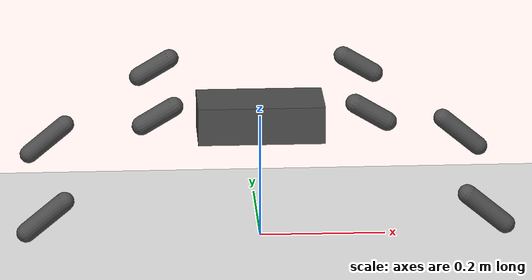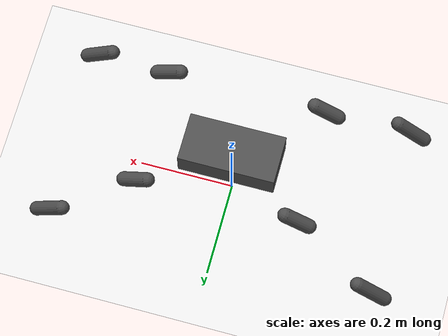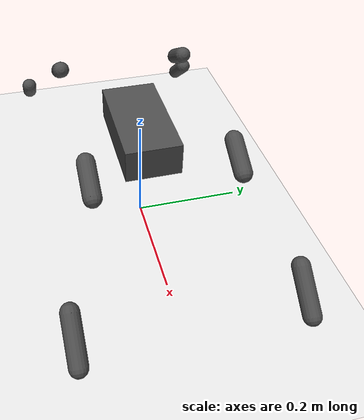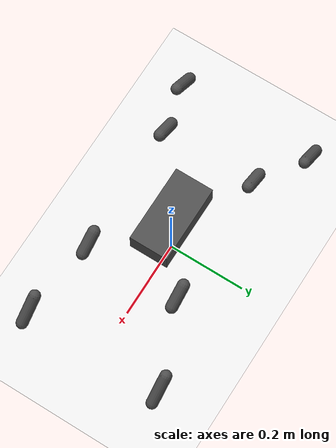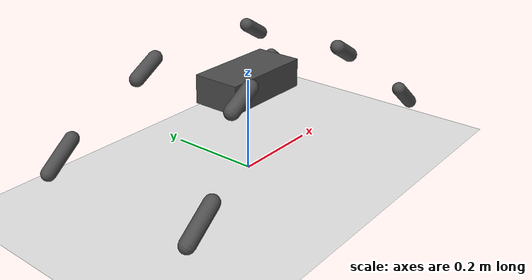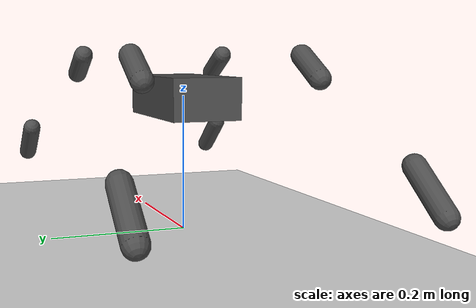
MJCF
<?xml version="1.0" ?>
<mujoco model="acebott_spider">
  <compiler angle="degree" coordinate="local"/>
  <option timestep="0.01" gravity="0 0 -9.81"/>

  <default>
    <joint limited="true" damping="0.5"/>
    <geom type="capsule" rgba="0.3 0.3 0.3 1"/>
    <motor ctrlrange="-1 1"/>
  </default>

  <worldbody>
    <!-- Ground -->
    <geom name="floor" type="plane" pos="0 0 0" size="5 5 0.1" rgba="0.9 0.9 0.9 1" contype="1" conaffinity="1"/>

    <!-- Central body -->
    <body name="torso" pos="0 0 0.2">
      <geom size="0.1 0.05 0.03" type="box" mass="1.0" />

      <!-- Front Left Leg -->
      <body name="front_left_hip" pos="0.07 0.06 0.03">
        <joint name="front_left_hip_joint" type="hinge" axis="0 1 0" range="-60 60"/>
        <geom fromto="0.07 0.06 0.03 0.12 0.06 0" size="0.015"/>

        <body name="front_left_knee" pos="0.12 0.06 -0.05">
          <joint name="front_left_knee_joint" type="hinge" axis="1 0 0" range="-45 45"/>
          <geom fromto="0.12 0.06 -0.05 0.18 0.06 -0.1" size="0.015"/>
        </body>
      </body>

      <!-- Front Right Leg -->
      <body name="front_right_hip" pos="0.07 -0.06 0.03">
        <joint name="front_right_hip_joint" type="hinge" axis="0 1 0" range="-60 60"/>
        <geom fromto="0.07 -0.06 0.03 0.12 -0.06 0" size="0.015"/>

        <body name="front_right_knee" pos="0.12 -0.06 -0.05">
          <joint name="front_right_knee_joint" type="hinge" axis="1 0 0" range="-45 45"/>
          <geom fromto="0.12 -0.06 -0.05 0.18 -0.06 -0.1" size="0.015"/>
        </body>
      </body>

      <!-- Back Left Leg -->
      <body name="back_left_hip" pos="-0.07 0.06 0.03">
        <joint name="back_left_hip_joint" type="hinge" axis="0 1 0" range="-60 60"/>
        <geom fromto="-0.07 0.06 0.03 -0.12 0.06 0" size="0.015"/>

        <body name="back_left_knee" pos="-0.12 0.06 -0.05">
          <joint name="back_left_knee_joint" type="hinge" axis="1 0 0" range="-45 45"/>
          <geom fromto="-0.12 0.06 -0.05 -0.18 0.06 -0.1" size="0.015"/>
        </body>
      </body>

      <!-- Back Right Leg -->
      <body name="back_right_hip" pos="-0.07 -0.06 0.03">
        <joint name="back_right_hip_joint" type="hinge" axis="0 1 0" range="-60 60"/>
        <geom fromto="-0.07 -0.06 0.03 -0.12 -0.06 0" size="0.015"/>

        <body name="back_right_knee" pos="-0.12 -0.06 -0.05">
          <joint name="back_right_knee_joint" type="hinge" axis="1 0 0" range="-45 45"/>
          <geom fromto="-0.12 -0.06 -0.05 -0.18 -0.06 -0.1" size="0.015"/>
        </body>
      </body>

    </body>
  </worldbody>

  <actuator>
    <!-- Motors: 2 per leg -->
    <motor joint="front_left_hip_joint"/>
    <motor joint="front_left_knee_joint"/>
    <motor joint="front_right_hip_joint"/>
    <motor joint="front_right_knee_joint"/>
    <motor joint="back_left_hip_joint"/>
    <motor joint="back_left_knee_joint"/>
    <motor joint="back_right_hip_joint"/>
    <motor joint="back_right_knee_joint"/>
  </actuator>
</mujoco>
